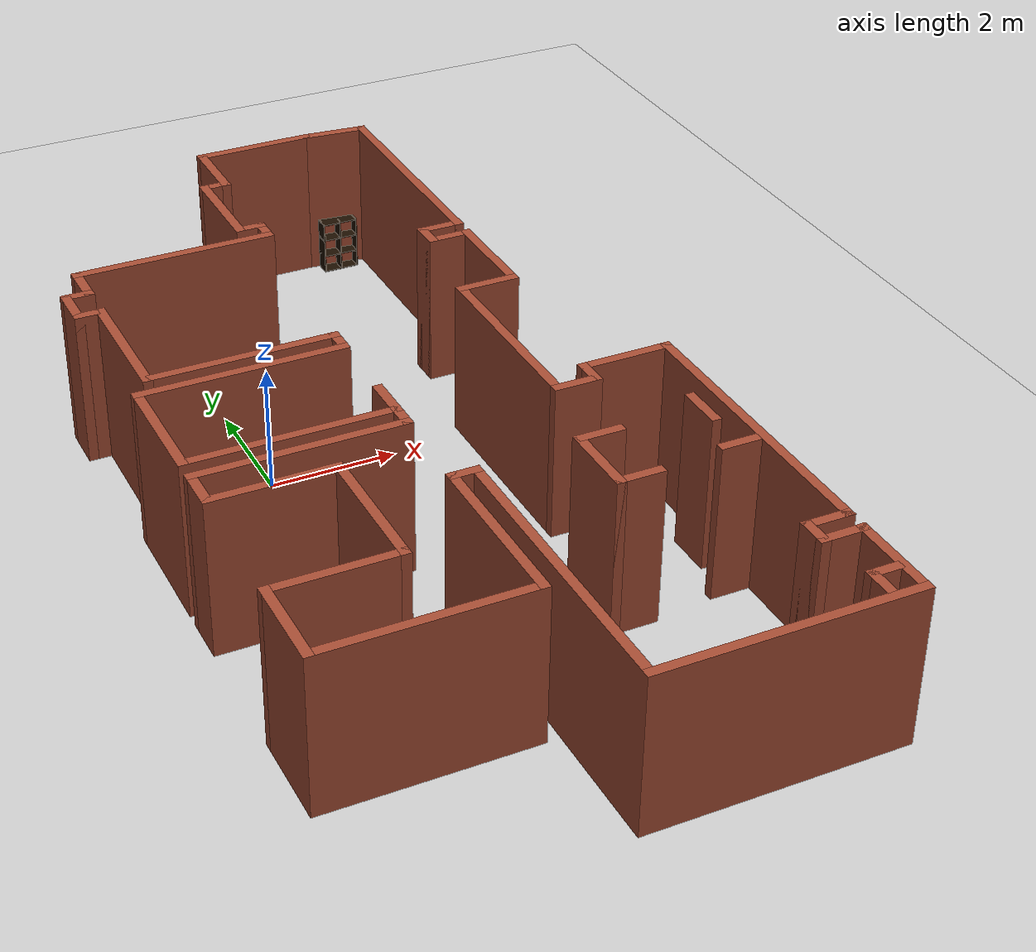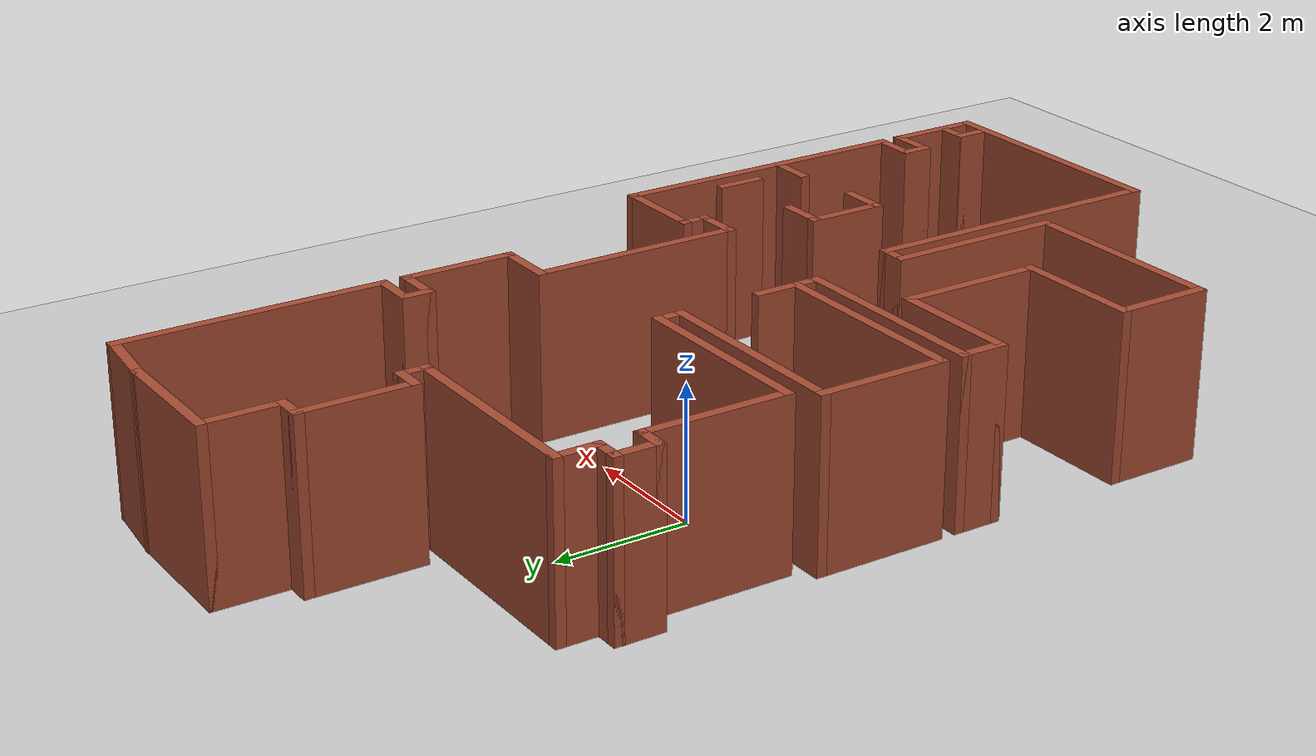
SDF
<sdf version="1.6">
 <world name="default">
  <light name="sun" type="directional">
   <pose>0 0 10 0 -0 0</pose>
   <diffuse>0.8 0.8 0.8 1</diffuse>
   <specular>0.2 0.2 0.2 1</specular>
   <attenuation>
    <range>1000</range>
    <constant>0.9</constant>
    <linear>0.01</linear>
    <quadratic>0.001</quadratic>
   </attenuation>
   <direction>-0.5 0.1 -0.9</direction>
  </light>
  <model name="ground_plane">
   <static>1</static>
   <link name="link">
    <collision name="collision">
     <geometry><plane><normal>0 0 1</normal><size>100 100</size></plane></geometry>
     <surface>
      <contact><collide_bitmask>65535</collide_bitmask></contact>
      <friction><ode><mu>100</mu><mu2>50</mu2></ode></friction>
     </surface>
    </collision>
    <visual name="visual">
     <cast_shadows>0</cast_shadows>
     <geometry><plane><normal>0 0 1</normal><size>100 100</size></plane></geometry>
     <material>
      <script><uri>file://media/materials/scripts/gazebo.material</uri><name>Gazebo/Grey</name></script>
     </material>
    </visual>
   </link>
  </model>
  <gravity>0 0 -9.8</gravity>
  <magnetic_field>6e-06 2.3e-05 -4.2e-05</magnetic_field>
  <atmosphere type="adiabatic"/>
  <physics name="default_physics" default="0" type="ode">
   <max_step_size>0.001</max_step_size>
   <real_time_factor>1</real_time_factor>
   <real_time_update_rate>1000</real_time_update_rate>
  </physics>
  <scene><ambient>0.4 0.4 0.4 1</ambient><background>0.7 0.7 0.7 1</background><shadows>1</shadows></scene>
  <audio><device>default</device></audio>
  <spherical_coordinates>
   <surface_model>EARTH_WGS84</surface_model>
   <latitude_deg>0</latitude_deg>
   <longitude_deg>0</longitude_deg>
   <elevation>0</elevation>
   <heading_deg>0</heading_deg>
  </spherical_coordinates>
  <model name="map_87">
   <pose>1.49596 -1.34946 0 0 -0 0</pose>
   <link name="Wall_1">
    <collision name="Wall_1_Collision">
     <geometry><box><size>2 0.15 2.5</size></box></geometry>
     <pose>0 0 1.25 0 -0 0</pose>
    </collision>
    <visual name="Wall_1_Visual">
     <pose>0 0 1.25 0 -0 0</pose>
     <geometry><box><size>2 0.15 2.5</size></box></geometry>
     <material>
      <script><uri>file://media/materials/scripts/gazebo.material</uri><name>Gazebo/Bricks</name></script>
      <ambient>1 1 1 1</ambient>
     </material>
     <meta><layer>0</layer></meta>
    </visual>
    <pose>0.675 7.47145 0 0 -0 3.14159</pose>
   </link>
   <link name="Wall_10">
    <collision name="Wall_10_Collision">
     <geometry><box><size>0.75 0.15 2.5</size></box></geometry>
     <pose>0 0 1.25 0 -0 0</pose>
    </collision>
    <visual name="Wall_10_Visual">
     <pose>0 0 1.25 0 -0 0</pose>
     <geometry><box><size>0.75 0.15 2.5</size></box></geometry>
     <material>
      <script><uri>file://media/materials/scripts/gazebo.material</uri><name>Gazebo/Bricks</name></script>
      <ambient>1 1 1 1</ambient>
     </material>
     <meta><layer>0</layer></meta>
    </visual>
    <pose>-3.7 3.52146 0 0 -0 -1.5708</pose>
   </link>
   <link name="Wall_11">
    <collision name="Wall_11_Collision">
     <geometry><box><size>0.5 0.15 2.5</size></box></geometry>
     <pose>0 0 1.25 0 -0 0</pose>
    </collision>
    <visual name="Wall_11_Visual">
     <pose>0 0 1.25 0 -0 0</pose>
     <geometry><box><size>0.5 0.15 2.5</size></box></geometry>
     <material>
      <script><uri>file://media/materials/scripts/gazebo.material</uri><name>Gazebo/Bricks</name></script>
      <ambient>1 1 1 1</ambient>
     </material>
     <meta><layer>0</layer></meta>
    </visual>
    <pose>-3.525 3.22146 0 0 -0 0</pose>
   </link>
   <link name="Wall_14">
    <collision name="Wall_14_Collision">
     <geometry><box><size>2.25 0.15 2.5</size></box></geometry>
     <pose>0 0 1.25 0 -0 0</pose>
    </collision>
    <visual name="Wall_14_Visual">
     <pose>0 0 1.25 0 -0 0</pose>
     <geometry><box><size>2.25 0.15 2.5</size></box></geometry>
     <material>
      <script><uri>file://media/materials/scripts/gazebo.material</uri><name>Gazebo/Bricks</name></script>
      <ambient>1 1 1 1</ambient>
     </material>
     <meta><layer>0</layer></meta>
    </visual>
    <pose>-3.35 2.17145 0 0 -0 -1.5708</pose>
   </link>
   <link name="Wall_15">
    <collision name="Wall_15_Collision">
     <geometry><box><size>3 0.15 2.5</size></box></geometry>
     <pose>0 0 1.25 0 -0 0</pose>
    </collision>
    <visual name="Wall_15_Visual">
     <pose>0 0 1.25 0 -0 0</pose>
     <geometry><box><size>3 0.15 2.5</size></box></geometry>
     <material>
      <script><uri>file://media/materials/scripts/gazebo.material</uri><name>Gazebo/Bricks</name></script>
      <ambient>1 1 1 1</ambient>
     </material>
     <meta><layer>0</layer></meta>
    </visual>
    <pose>-1.925 1.12146 0 0 -0 0</pose>
   </link>
   <link name="Wall_16">
    <collision name="Wall_16_Collision">
     <geometry><box><size>0.5 0.15 2.5</size></box></geometry>
     <pose>0 0 1.25 0 -0 0</pose>
    </collision>
    <visual name="Wall_16_Visual">
     <pose>0 0 1.25 0 -0 0</pose>
     <geometry><box><size>0.5 0.15 2.5</size></box></geometry>
     <material>
      <script><uri>file://media/materials/scripts/gazebo.material</uri><name>Gazebo/Bricks</name></script>
      <ambient>1 1 1 1</ambient>
     </material>
     <meta><layer>0</layer></meta>
    </visual>
    <pose>-0.5 0.946455 0 0 -0 -1.5708</pose>
   </link>
   <link name="Wall_17">
    <collision name="Wall_17_Collision">
     <geometry><box><size>3.25 0.15 2.5</size></box></geometry>
     <pose>0 0 1.25 0 -0 0</pose>
    </collision>
    <visual name="Wall_17_Visual">
     <pose>0 0 1.25 0 -0 0</pose>
     <geometry><box><size>3.25 0.15 2.5</size></box></geometry>
     <material>
      <script><uri>file://media/materials/scripts/gazebo.material</uri><name>Gazebo/Bricks</name></script>
      <ambient>1 1 1 1</ambient>
     </material>
     <meta><layer>0</layer></meta>
    </visual>
    <pose>-2.05 0.771455 0 0 -0 3.14159</pose>
   </link>
   <link name="Wall_18">
    <collision name="Wall_18_Collision">
     <geometry><box><size>2 0.15 2.5</size></box></geometry>
     <pose>0 0 1.25 0 -0 0</pose>
    </collision>
    <visual name="Wall_18_Visual">
     <pose>0 0 1.25 0 -0 0</pose>
     <geometry><box><size>2 0.15 2.5</size></box></geometry>
     <material>
      <script><uri>file://media/materials/scripts/gazebo.material</uri><name>Gazebo/Bricks</name></script>
      <ambient>1 1 1 1</ambient>
     </material>
     <meta><layer>0</layer></meta>
    </visual>
    <pose>-3.6 -0.153545 0 0 -0 -1.5708</pose>
   </link>
   <link name="Wall_19">
    <collision name="Wall_19_Collision">
     <geometry><box><size>3.25 0.15 2.5</size></box></geometry>
     <pose>0 0 1.25 0 -0 0</pose>
    </collision>
    <visual name="Wall_19_Visual">
     <pose>0 0 1.25 0 -0 0</pose>
     <geometry><box><size>3.25 0.15 2.5</size></box></geometry>
     <material>
      <script><uri>file://media/materials/scripts/gazebo.material</uri><name>Gazebo/Bricks</name></script>
      <ambient>1 1 1 1</ambient>
     </material>
     <meta><layer>0</layer></meta>
    </visual>
    <pose>-2.05 -1.07855 0 0 -0 0</pose>
   </link>
   <link name="Wall_2">
    <collision name="Wall_2_Collision">
     <geometry><box><size>1.25 0.15 2.5</size></box></geometry>
     <pose>0 0 1.25 0 -0 0</pose>
    </collision>
    <visual name="Wall_2_Visual">
     <pose>0 0 1.25 0 -0 0</pose>
     <geometry><box><size>1.25 0.15 2.5</size></box></geometry>
     <material>
      <script><uri>file://media/materials/scripts/gazebo.material</uri><name>Gazebo/Bricks</name></script>
      <ambient>1 1 1 1</ambient>
     </material>
     <meta><layer>0</layer></meta>
    </visual>
    <pose>-0.25 6.92145 0 0 -0 -1.5708</pose>
   </link>
   <link name="Wall_20">
    <collision name="Wall_20_Collision">
     <geometry><box><size>0.5 0.15 2.5</size></box></geometry>
     <pose>0 0 1.25 0 -0 0</pose>
    </collision>
    <visual name="Wall_20_Visual">
     <pose>0 0 1.25 0 -0 0</pose>
     <geometry><box><size>0.5 0.15 2.5</size></box></geometry>
     <material>
      <script><uri>file://media/materials/scripts/gazebo.material</uri><name>Gazebo/Bricks</name></script>
      <ambient>1 1 1 1</ambient>
     </material>
     <meta><layer>0</layer></meta>
    </visual>
    <pose>-0.5 -1.25354 0 0 -0 -1.5708</pose>
   </link>
   <link name="Wall_21">
    <collision name="Wall_21_Collision">
     <geometry><box><size>3.25 0.15 2.5</size></box></geometry>
     <pose>0 0 1.25 0 -0 0</pose>
    </collision>
    <visual name="Wall_21_Visual">
     <pose>0 0 1.25 0 -0 0</pose>
     <geometry><box><size>3.25 0.15 2.5</size></box></geometry>
     <material>
      <script><uri>file://media/materials/scripts/gazebo.material</uri><name>Gazebo/Bricks</name></script>
      <ambient>1 1 1 1</ambient>
     </material>
     <meta><layer>0</layer></meta>
    </visual>
    <pose>-2.05 -1.42854 0 0 -0 3.14159</pose>
   </link>
   <link name="Wall_22">
    <collision name="Wall_22_Collision">
     <geometry><box><size>0.75 0.15 2.5</size></box></geometry>
     <pose>0 0 1.25 0 -0 0</pose>
    </collision>
    <visual name="Wall_22_Visual">
     <pose>0 0 1.25 0 -0 0</pose>
     <geometry><box><size>0.75 0.15 2.5</size></box></geometry>
     <material>
      <script><uri>file://media/materials/scripts/gazebo.material</uri><name>Gazebo/Bricks</name></script>
      <ambient>1 1 1 1</ambient>
     </material>
     <meta><layer>0</layer></meta>
    </visual>
    <pose>-3.6 -1.72854 0 0 -0 -1.5708</pose>
   </link>
   <link name="Wall_25">
    <collision name="Wall_25_Collision">
     <geometry><box><size>2 0.15 2.5</size></box></geometry>
     <pose>0 0 1.25 0 -0 0</pose>
    </collision>
    <visual name="Wall_25_Visual">
     <pose>0 0 1.25 0 -0 0</pose>
     <geometry><box><size>2 0.15 2.5</size></box></geometry>
     <material>
      <script><uri>file://media/materials/scripts/gazebo.material</uri><name>Gazebo/Bricks</name></script>
      <ambient>1 1 1 1</ambient>
     </material>
     <meta><layer>0</layer></meta>
    </visual>
    <pose>-2.675 -2.02854 0 0 -0 0</pose>
   </link>
   <link name="Wall_26">
    <collision name="Wall_26_Collision">
     <geometry><box><size>2.25 0.15 2.5</size></box></geometry>
     <pose>0 0 1.25 0 -0 0</pose>
    </collision>
    <visual name="Wall_26_Visual">
     <pose>0 0 1.25 0 -0 0</pose>
     <geometry><box><size>2.25 0.15 2.5</size></box></geometry>
     <material>
      <script><uri>file://media/materials/scripts/gazebo.material</uri><name>Gazebo/Bricks</name></script>
      <ambient>1 1 1 1</ambient>
     </material>
     <meta><layer>0</layer></meta>
    </visual>
    <pose>-1.75 -3.07855 0 0 -0 -1.5708</pose>
   </link>
   <link name="Wall_27">
    <collision name="Wall_27_Collision">
     <geometry><box><size>2 0.15 2.5</size></box></geometry>
     <pose>0 0 1.25 0 -0 0</pose>
    </collision>
    <visual name="Wall_27_Visual">
     <pose>0 0 1.25 0 -0 0</pose>
     <geometry><box><size>2 0.15 2.5</size></box></geometry>
     <material>
      <script><uri>file://media/materials/scripts/gazebo.material</uri><name>Gazebo/Bricks</name></script>
      <ambient>1 1 1 1</ambient>
     </material>
     <meta><layer>0</layer></meta>
    </visual>
    <pose>-2.675 -4.12854 0 0 -0 3.14159</pose>
   </link>
   <link name="Wall_28">
    <collision name="Wall_28_Collision">
     <geometry><box><size>1.5 0.15 2.5</size></box></geometry>
     <pose>0 0 1.25 0 -0 0</pose>
    </collision>
    <visual name="Wall_28_Visual">
     <pose>0 0 1.25 0 -0 0</pose>
     <geometry><box><size>1.5 0.15 2.5</size></box></geometry>
     <material>
      <script><uri>file://media/materials/scripts/gazebo.material</uri><name>Gazebo/Bricks</name></script>
      <ambient>1 1 1 1</ambient>
     </material>
     <meta><layer>0</layer></meta>
    </visual>
    <pose>-3.6 -4.80354 0 0 -0 -1.5708</pose>
   </link>
   <link name="Wall_29">
    <collision name="Wall_29_Collision">
     <geometry><box><size>3.25 0.15 2.5</size></box></geometry>
     <pose>0 0 1.25 0 -0 0</pose>
    </collision>
    <visual name="Wall_29_Visual">
     <pose>0 0 1.25 0 -0 0</pose>
     <geometry><box><size>3.25 0.15 2.5</size></box></geometry>
     <material>
      <script><uri>file://media/materials/scripts/gazebo.material</uri><name>Gazebo/Bricks</name></script>
      <ambient>1 1 1 1</ambient>
     </material>
     <meta><layer>0</layer></meta>
    </visual>
    <pose>-2.05 -5.47855 0 0 -0 0</pose>
   </link>
   <link name="Wall_3">
    <collision name="Wall_3_Collision">
     <geometry><box><size>0.5 0.15 2.5</size></box></geometry>
     <pose>0 0 1.25 0 -0 0</pose>
    </collision>
    <visual name="Wall_3_Visual">
     <pose>0 0 1.25 0 -0 0</pose>
     <geometry><box><size>0.5 0.15 2.5</size></box></geometry>
     <material>
      <script><uri>file://media/materials/scripts/gazebo.material</uri><name>Gazebo/Bricks</name></script>
      <ambient>1 1 1 1</ambient>
     </material>
     <meta><layer>0</layer></meta>
    </visual>
    <pose>-0.425 6.37146 0 0 -0 3.14159</pose>
   </link>
   <link name="Wall_30">
    <collision name="Wall_30_Collision">
     <geometry><box><size>2.75 0.15 2.5</size></box></geometry>
     <pose>0 0 1.25 0 -0 0</pose>
    </collision>
    <visual name="Wall_30_Visual">
     <pose>0 0 1.25 0 -0 0</pose>
     <geometry><box><size>2.75 0.15 2.5</size></box></geometry>
     <material>
      <script><uri>file://media/materials/scripts/gazebo.material</uri><name>Gazebo/Bricks</name></script>
      <ambient>1 1 1 1</ambient>
     </material>
     <meta><layer>0</layer></meta>
    </visual>
    <pose>-0.5 -4.17854 0 0 -0 1.5708</pose>
   </link>
   <link name="Wall_33">
    <collision name="Wall_33_Collision">
     <geometry><box><size>0.5 0.15 2.5</size></box></geometry>
     <pose>0 0 1.25 0 -0 0</pose>
    </collision>
    <visual name="Wall_33_Visual">
     <pose>0 0 1.25 0 -0 0</pose>
     <geometry><box><size>0.5 0.15 2.5</size></box></geometry>
     <material>
      <script><uri>file://media/materials/scripts/gazebo.material</uri><name>Gazebo/Bricks</name></script>
      <ambient>1 1 1 1</ambient>
     </material>
     <meta><layer>0</layer></meta>
    </visual>
    <pose>-0.325 -2.87854 0 0 -0 0</pose>
   </link>
   <link name="Wall_34">
    <collision name="Wall_34_Collision">
     <geometry><box><size>4.75 0.15 2.5</size></box></geometry>
     <pose>0 0 1.25 0 -0 0</pose>
    </collision>
    <visual name="Wall_34_Visual">
     <pose>0 0 1.25 0 -0 0</pose>
     <geometry><box><size>4.75 0.15 2.5</size></box></geometry>
     <material>
      <script><uri>file://media/materials/scripts/gazebo.material</uri><name>Gazebo/Bricks</name></script>
      <ambient>1 1 1 1</ambient>
     </material>
     <meta><layer>0</layer></meta>
    </visual>
    <pose>-0.15 -5.17854 0 0 -0 -1.5708</pose>
   </link>
   <link name="Wall_35">
    <collision name="Wall_35_Collision">
     <geometry><box><size>4 0.15 2.5</size></box></geometry>
     <pose>0 0 1.25 0 -0 0</pose>
    </collision>
    <visual name="Wall_35_Visual">
     <pose>0 0 1.25 0 -0 0</pose>
     <geometry><box><size>4 0.15 2.5</size></box></geometry>
     <material>
      <script><uri>file://media/materials/scripts/gazebo.material</uri><name>Gazebo/Bricks</name></script>
      <ambient>1 1 1 1</ambient>
     </material>
     <meta><layer>0</layer></meta>
    </visual>
    <pose>1.775 -7.47855 0 0 -0 0</pose>
   </link>
   <link name="Wall_36">
    <collision name="Wall_36_Collision">
     <geometry><box><size>1.5 0.15 2.5</size></box></geometry>
     <pose>0 0 1.25 0 -0 0</pose>
    </collision>
    <visual name="Wall_36_Visual">
     <pose>0 0 1.25 0 -0 0</pose>
     <geometry><box><size>1.5 0.15 2.5</size></box></geometry>
     <material>
      <script><uri>file://media/materials/scripts/gazebo.material</uri><name>Gazebo/Bricks</name></script>
      <ambient>1 1 1 1</ambient>
     </material>
     <meta><layer>0</layer></meta>
    </visual>
    <pose>3.7 -6.80354 0 0 -0 1.5708</pose>
   </link>
   <link name="Wall_37">
    <collision name="Wall_37_Collision">
     <geometry><box><size>0.75 0.15 2.5</size></box></geometry>
     <pose>0 0 1.25 0 -0 0</pose>
    </collision>
    <visual name="Wall_37_Visual">
     <pose>0 0 1.25 0 -0 0</pose>
     <geometry><box><size>0.75 0.15 2.5</size></box></geometry>
     <material>
      <script><uri>file://media/materials/scripts/gazebo.material</uri><name>Gazebo/Bricks</name></script>
      <ambient>1 1 1 1</ambient>
     </material>
     <meta><layer>0</layer></meta>
    </visual>
    <pose>3.4 -6.12854 0 0 -0 3.14159</pose>
   </link>
   <link name="Wall_38">
    <collision name="Wall_38_Collision">
     <geometry><box><size>0.5 0.15 2.5</size></box></geometry>
     <pose>0 0 1.25 0 -0 0</pose>
    </collision>
    <visual name="Wall_38_Visual">
     <pose>0 0 1.25 0 -0 0</pose>
     <geometry><box><size>0.5 0.15 2.5</size></box></geometry>
     <material>
      <script><uri>file://media/materials/scripts/gazebo.material</uri><name>Gazebo/Bricks</name></script>
      <ambient>1 1 1 1</ambient>
     </material>
     <meta><layer>0</layer></meta>
    </visual>
    <pose>3.1 -5.95355 0 0 -0 1.5708</pose>
   </link>
   <link name="Wall_39">
    <collision name="Wall_39_Collision">
     <geometry><box><size>0.75 0.15 2.5</size></box></geometry>
     <pose>0 0 1.25 0 -0 0</pose>
    </collision>
    <visual name="Wall_39_Visual">
     <pose>0 0 1.25 0 -0 0</pose>
     <geometry><box><size>0.75 0.15 2.5</size></box></geometry>
     <material>
      <script><uri>file://media/materials/scripts/gazebo.material</uri><name>Gazebo/Bricks</name></script>
      <ambient>1 1 1 1</ambient>
     </material>
     <meta><layer>0</layer></meta>
    </visual>
    <pose>3.4 -5.77855 0 0 -0 0</pose>
   </link>
   <link name="Wall_4">
    <collision name="Wall_4_Collision">
     <geometry><box><size>1.75 0.15 2.5</size></box></geometry>
     <pose>0 0 1.25 0 -0 0</pose>
    </collision>
    <visual name="Wall_4_Visual">
     <pose>0 0 1.25 0 -0 0</pose>
     <geometry><box><size>1.75 0.15 2.5</size></box></geometry>
     <material>
      <script><uri>file://media/materials/scripts/gazebo.material</uri><name>Gazebo/Bricks</name></script>
      <ambient>1 1 1 1</ambient>
     </material>
     <meta><layer>0</layer></meta>
    </visual>
    <pose>-0.6 5.57146 0 0 -0 -1.5708</pose>
   </link>
   <link name="Wall_40">
    <collision name="Wall_40_Collision">
     <geometry><box><size>4.75 0.15 2.5</size></box></geometry>
     <pose>0 0 1.25 0 -0 0</pose>
    </collision>
    <visual name="Wall_40_Visual">
     <pose>0 0 1.25 0 -0 0</pose>
     <geometry><box><size>4.75 0.15 2.5</size></box></geometry>
     <material>
      <script><uri>file://media/materials/scripts/gazebo.material</uri><name>Gazebo/Bricks</name></script>
      <ambient>1 1 1 1</ambient>
     </material>
     <meta><layer>0</layer></meta>
    </visual>
    <pose>3.7 -3.47854 0 0 -0 1.5708</pose>
   </link>
   <link name="Wall_41">
    <collision name="Wall_41_Collision">
     <geometry><box><size>1.5 0.15 2.5</size></box></geometry>
     <pose>0 0 1.25 0 -0 0</pose>
    </collision>
    <visual name="Wall_41_Visual">
     <pose>0 0 1.25 0 -0 0</pose>
     <geometry><box><size>1.5 0.15 2.5</size></box></geometry>
     <material>
      <script><uri>file://media/materials/scripts/gazebo.material</uri><name>Gazebo/Bricks</name></script>
      <ambient>1 1 1 1</ambient>
     </material>
     <meta><layer>0</layer></meta>
    </visual>
    <pose>3.025 -1.17854 0 0 -0 3.14159</pose>
   </link>
   <link name="Wall_42">
    <collision name="Wall_42_Collision">
     <geometry><box><size>0.5 0.15 2.5</size></box></geometry>
     <pose>0 0 1.25 0 -0 0</pose>
    </collision>
    <visual name="Wall_42_Visual">
     <pose>0 0 1.25 0 -0 0</pose>
     <geometry><box><size>0.5 0.15 2.5</size></box></geometry>
     <material>
      <script><uri>file://media/materials/scripts/gazebo.material</uri><name>Gazebo/Bricks</name></script>
      <ambient>1 1 1 1</ambient>
     </material>
     <meta><layer>0</layer></meta>
    </visual>
    <pose>2.35 -1.35354 0 0 -0 -1.5708</pose>
   </link>
   <link name="Wall_43">
    <collision name="Wall_43_Collision">
     <geometry><box><size>0.75 0.15 2.5</size></box></geometry>
     <pose>0 0 1.25 0 -0 0</pose>
    </collision>
    <visual name="Wall_43_Visual">
     <pose>0 0 1.25 0 -0 0</pose>
     <geometry><box><size>0.75 0.15 2.5</size></box></geometry>
     <material>
      <script><uri>file://media/materials/scripts/gazebo.material</uri><name>Gazebo/Bricks</name></script>
      <ambient>1 1 1 1</ambient>
     </material>
     <meta><layer>0</layer></meta>
    </visual>
    <pose>2.05 -1.52855 0 0 -0 3.14159</pose>
   </link>
   <link name="Wall_44">
    <collision name="Wall_44_Collision">
     <geometry><box><size>3.25 0.15 2.5</size></box></geometry>
     <pose>0 0 1.25 0 -0 0</pose>
    </collision>
    <visual name="Wall_44_Visual">
     <pose>0 0 1.25 0 -0 0</pose>
     <geometry><box><size>3.25 0.15 2.5</size></box></geometry>
     <material>
      <script><uri>file://media/materials/scripts/gazebo.material</uri><name>Gazebo/Bricks</name></script>
      <ambient>1 1 1 1</ambient>
     </material>
     <meta><layer>0</layer></meta>
    </visual>
    <pose>1.75 0.021455 0 0 -0 1.5708</pose>
   </link>
   <link name="Wall_45">
    <collision name="Wall_45_Collision">
     <geometry><box><size>1 0.15 2.5</size></box></geometry>
     <pose>0 0 1.25 0 -0 0</pose>
    </collision>
    <visual name="Wall_45_Visual">
     <pose>0 0 1.25 0 -0 0</pose>
     <geometry><box><size>1 0.15 2.5</size></box></geometry>
     <material>
      <script><uri>file://media/materials/scripts/gazebo.material</uri><name>Gazebo/Bricks</name></script>
      <ambient>1 1 1 1</ambient>
     </material>
     <meta><layer>0</layer></meta>
    </visual>
    <pose>2.175 1.57146 0 0 -0 0</pose>
   </link>
   <link name="Wall_46">
    <collision name="Wall_46_Collision">
     <geometry><box><size>1.75 0.15 2.5</size></box></geometry>
     <pose>0 0 1.25 0 -0 0</pose>
    </collision>
    <visual name="Wall_46_Visual">
     <pose>0 0 1.25 0 -0 0</pose>
     <geometry><box><size>1.75 0.15 2.5</size></box></geometry>
     <material>
      <script><uri>file://media/materials/scripts/gazebo.material</uri><name>Gazebo/Bricks</name></script>
      <ambient>1 1 1 1</ambient>
     </material>
     <meta><layer>0</layer></meta>
    </visual>
    <pose>2.6 2.37146 0 0 -0 1.5708</pose>
   </link>
   <link name="Wall_47">
    <collision name="Wall_47_Collision">
     <geometry><box><size>0.75 0.15 2.5</size></box></geometry>
     <pose>0 0 1.25 0 -0 0</pose>
    </collision>
    <visual name="Wall_47_Visual">
     <pose>0 0 1.25 0 -0 0</pose>
     <geometry><box><size>0.75 0.15 2.5</size></box></geometry>
     <material>
      <script><uri>file://media/materials/scripts/gazebo.material</uri><name>Gazebo/Bricks</name></script>
      <ambient>1 1 1 1</ambient>
     </material>
     <meta><layer>0</layer></meta>
    </visual>
    <pose>2.3 3.17145 0 0 -0 3.14159</pose>
   </link>
   <link name="Wall_48">
    <collision name="Wall_48_Collision">
     <geometry><box><size>0.5 0.15 2.5</size></box></geometry>
     <pose>0 0 1.25 0 -0 0</pose>
    </collision>
    <visual name="Wall_48_Visual">
     <pose>0 0 1.25 0 -0 0</pose>
     <geometry><box><size>0.5 0.15 2.5</size></box></geometry>
     <material>
      <script><uri>file://media/materials/scripts/gazebo.material</uri><name>Gazebo/Bricks</name></script>
      <ambient>1 1 1 1</ambient>
     </material>
     <meta><layer>0</layer></meta>
    </visual>
    <pose>2 3.34646 0 0 -0 1.5708</pose>
   </link>
   <link name="Wall_49">
    <collision name="Wall_49_Collision">
     <geometry><box><size>0.75 0.15 2.5</size></box></geometry>
     <pose>0 0 1.25 0 -0 0</pose>
    </collision>
    <visual name="Wall_49_Visual">
     <pose>0 0 1.25 0 -0 0</pose>
     <geometry><box><size>0.75 0.15 2.5</size></box></geometry>
     <material>
      <script><uri>file://media/materials/scripts/gazebo.material</uri><name>Gazebo/Bricks</name></script>
      <ambient>1 1 1 1</ambient>
     </material>
     <meta><layer>0</layer></meta>
    </visual>
    <pose>2.3 3.52146 0 0 -0 0</pose>
   </link>
   <link name="Wall_5">
    <collision name="Wall_5_Collision">
     <geometry><box><size>0.5 0.15 2.5</size></box></geometry>
     <pose>0 0 1.25 0 -0 0</pose>
    </collision>
    <visual name="Wall_5_Visual">
     <pose>0 0 1.25 0 -0 0</pose>
     <geometry><box><size>0.5 0.15 2.5</size></box></geometry>
     <material>
      <script><uri>file://media/materials/scripts/gazebo.material</uri><name>Gazebo/Bricks</name></script>
      <ambient>1 1 1 1</ambient>
     </material>
     <meta><layer>0</layer></meta>
    </visual>
    <pose>-0.425 4.77145 0 0 -0 0</pose>
   </link>
   <link name="Wall_50">
    <collision name="Wall_50_Collision">
     <geometry><box><size>4 0.15 2.5</size></box></geometry>
     <pose>0 0 1.25 0 -0 0</pose>
    </collision>
    <visual name="Wall_50_Visual">
     <pose>0 0 1.25 0 -0 0</pose>
     <geometry><box><size>4 0.15 2.5</size></box></geometry>
     <material>
      <script><uri>file://media/materials/scripts/gazebo.material</uri><name>Gazebo/Bricks</name></script>
      <ambient>1 1 1 1</ambient>
     </material>
     <meta><layer>0</layer></meta>
    </visual>
    <pose>2.6 5.44646 0 0 -0 1.5708</pose>
   </link>
   <link name="Wall_51">
    <collision name="Wall_51_Collision">
     <geometry><box><size>1.15499 0.15 2.5</size></box></geometry>
     <pose>0 0 1.25 0 -0 0</pose>
    </collision>
    <visual name="Wall_51_Visual">
     <pose>0 0 1.25 0 -0 0</pose>
     <geometry><box><size>1.15499 0.15 2.5</size></box></geometry>
     <material>
      <script><uri>file://media/materials/scripts/gazebo.material</uri><name>Gazebo/Bricks</name></script>
      <ambient>1 1 1 1</ambient>
     </material>
     <meta><layer>0</layer></meta>
    </visual>
    <pose>2.1 7.42145 0 0 -0 3.04192</pose>
   </link>
   <link name="Wall_53">
    <collision name="Wall_53_Collision">
     <geometry><box><size>0.75 0.15 2.5</size></box></geometry>
     <pose>0 0 1.25 0 -0 0</pose>
    </collision>
    <visual name="Wall_53_Visual">
     <pose>0 0 1.25 0 -0 0</pose>
     <geometry><box><size>0.75 0.15 2.5</size></box></geometry>
     <material>
      <script><uri>file://media/materials/scripts/gazebo.material</uri><name>Gazebo/Bricks</name></script>
      <ambient>1 1 1 1</ambient>
     </material>
     <meta><layer>0</layer></meta>
    </visual>
    <pose>1.72215 -2.80074 0 0 -0 3.14159</pose>
   </link>
   <link name="Wall_54">
    <collision name="Wall_54_Collision">
     <geometry><box><size>1.25 0.15 2.5</size></box></geometry>
     <pose>0 0 1.25 0 -0 0</pose>
    </collision>
    <visual name="Wall_54_Visual">
     <pose>0 0 1.25 0 -0 0</pose>
     <geometry><box><size>1.25 0.15 2.5</size></box></geometry>
     <material>
      <script><uri>file://media/materials/scripts/gazebo.material</uri><name>Gazebo/Bricks</name></script>
      <ambient>1 1 1 1</ambient>
     </material>
     <meta><layer>0</layer></meta>
    </visual>
    <pose>1.42214 -3.35074 0 0 -0 -1.5708</pose>
   </link>
   <link name="Wall_55">
    <collision name="Wall_55_Collision">
     <geometry><box><size>0.75 0.15 2.5</size></box></geometry>
     <pose>0 0 1.25 0 -0 0</pose>
    </collision>
    <visual name="Wall_55_Visual">
     <pose>0 0 1.25 0 -0 0</pose>
     <geometry><box><size>0.75 0.15 2.5</size></box></geometry>
     <material>
      <script><uri>file://media/materials/scripts/gazebo.material</uri><name>Gazebo/Bricks</name></script>
      <ambient>1 1 1 1</ambient>
     </material>
     <meta><layer>0</layer></meta>
    </visual>
    <pose>1.72215 -3.90074 0 0 -0 0</pose>
   </link>
   <link name="Wall_57">
    <collision name="Wall_57_Collision">
     <geometry><box><size>0.75 0.15 2.5</size></box></geometry>
     <pose>0 0 1.25 0 -0 0</pose>
    </collision>
    <visual name="Wall_57_Visual">
     <pose>0 0 1.25 0 -0 0</pose>
     <geometry><box><size>0.75 0.15 2.5</size></box></geometry>
     <material>
      <script><uri>file://media/materials/scripts/gazebo.material</uri><name>Gazebo/Bricks</name></script>
      <ambient>1 1 1 1</ambient>
     </material>
     <meta><layer>0</layer></meta>
    </visual>
    <pose>3.37555 -3.78575 0 0 -0 3.14159</pose>
   </link>
   <link name="Wall_59">
    <collision name="Wall_59_Collision">
     <geometry><box><size>0.75 0.15 2.5</size></box></geometry>
     <pose>0 0 1.25 0 -0 0</pose>
    </collision>
    <visual name="Wall_59_Visual">
     <pose>0 0 1.25 0 -0 0</pose>
     <geometry><box><size>0.75 0.15 2.5</size></box></geometry>
     <material>
      <script><uri>file://media/materials/scripts/gazebo.material</uri><name>Gazebo/Bricks</name></script>
      <ambient>1 1 1 1</ambient>
     </material>
     <meta><layer>0</layer></meta>
    </visual>
    <pose>3.32376 -2.81931 0 0 -0 -1.5708</pose>
   </link>
   <link name="Wall_6">
    <collision name="Wall_6_Collision">
     <geometry><box><size>0.5 0.15 2.5</size></box></geometry>
     <pose>0 0 1.25 0 -0 0</pose>
    </collision>
    <visual name="Wall_6_Visual">
     <pose>0 0 1.25 0 -0 0</pose>
     <geometry><box><size>0.5 0.15 2.5</size></box></geometry>
     <material>
      <script><uri>file://media/materials/scripts/gazebo.material</uri><name>Gazebo/Bricks</name></script>
      <ambient>1 1 1 1</ambient>
     </material>
     <meta><layer>0</layer></meta>
    </visual>
    <pose>-0.25 4.59645 0 0 -0 -1.5708</pose>
   </link>
   <link name="Wall_61">
    <collision name="Wall_61_Collision">
     <geometry><box><size>0.5 0.15 2.5</size></box></geometry>
     <pose>0 0 1.25 0 -0 0</pose>
    </collision>
    <visual name="Wall_61_Visual">
     <pose>0 0 1.25 0 -0 0</pose>
     <geometry><box><size>0.5 0.15 2.5</size></box></geometry>
     <material>
      <script><uri>file://media/materials/scripts/gazebo.material</uri><name>Gazebo/Bricks</name></script>
      <ambient>1 1 1 1</ambient>
     </material>
     <meta><layer>0</layer></meta>
    </visual>
    <pose>3.43019 -6.98702 0 0 -0 3.14159</pose>
   </link>
   <link name="Wall_62">
    <collision name="Wall_62_Collision">
     <geometry><box><size>0.5 0.15 2.5</size></box></geometry>
     <pose>0 0 1.25 0 -0 0</pose>
    </collision>
    <visual name="Wall_62_Visual">
     <pose>0 0 1.25 0 -0 0</pose>
     <geometry><box><size>0.5 0.15 2.5</size></box></geometry>
     <material>
      <script><uri>file://media/materials/scripts/gazebo.material</uri><name>Gazebo/Bricks</name></script>
      <ambient>1 1 1 1</ambient>
     </material>
     <meta><layer>0</layer></meta>
    </visual>
    <pose>3.25519 -7.16202 0 0 -0 -1.5708</pose>
   </link>
   <link name="Wall_66">
    <collision name="Wall_66_Collision">
     <geometry><box><size>0.75 0.15 2.5</size></box></geometry>
     <pose>0 0 1.25 0 -0 0</pose>
    </collision>
    <visual name="Wall_66_Visual">
     <pose>0 0 1.25 0 -0 0</pose>
     <geometry><box><size>0.75 0.15 2.5</size></box></geometry>
     <material>
      <script><uri>file://media/materials/scripts/gazebo.material</uri><name>Gazebo/Bricks</name></script>
      <ambient>1 1 1 1</ambient>
     </material>
     <meta><layer>0</layer></meta>
    </visual>
    <pose>-0.5 -0.778545 0 0 -0 1.5708</pose>
   </link>
   <link name="Wall_7">
    <collision name="Wall_7_Collision">
     <geometry><box><size>3.25 0.15 2.5</size></box></geometry>
     <pose>0 0 1.25 0 -0 0</pose>
    </collision>
    <visual name="Wall_7_Visual">
     <pose>0 0 1.25 0 -0 0</pose>
     <geometry><box><size>3.25 0.15 2.5</size></box></geometry>
     <material>
      <script><uri>file://media/materials/scripts/gazebo.material</uri><name>Gazebo/Bricks</name></script>
      <ambient>1 1 1 1</ambient>
     </material>
     <meta><layer>0</layer></meta>
    </visual>
    <pose>-1.8 4.42145 0 0 -0 3.14159</pose>
   </link>
   <link name="Wall_8">
    <collision name="Wall_8_Collision">
     <geometry><box><size>0.75 0.15 2.5</size></box></geometry>
     <pose>0 0 1.25 0 -0 0</pose>
    </collision>
    <visual name="Wall_8_Visual">
     <pose>0 0 1.25 0 -0 0</pose>
     <geometry><box><size>0.75 0.15 2.5</size></box></geometry>
     <material>
      <script><uri>file://media/materials/scripts/gazebo.material</uri><name>Gazebo/Bricks</name></script>
      <ambient>1 1 1 1</ambient>
     </material>
     <meta><layer>0</layer></meta>
    </visual>
    <pose>-3.35 4.12146 0 0 -0 -1.5708</pose>
   </link>
   <link name="Wall_9">
    <collision name="Wall_9_Collision">
     <geometry><box><size>0.5 0.15 2.5</size></box></geometry>
     <pose>0 0 1.25 0 -0 0</pose>
    </collision>
    <visual name="Wall_9_Visual">
     <pose>0 0 1.25 0 -0 0</pose>
     <geometry><box><size>0.5 0.15 2.5</size></box></geometry>
     <material>
      <script><uri>file://media/materials/scripts/gazebo.material</uri><name>Gazebo/Bricks</name></script>
      <ambient>1 1 1 1</ambient>
     </material>
     <meta><layer>0</layer></meta>
    </visual>
    <pose>-3.525 3.82145 0 0 -0 3.14159</pose>
   </link>
   <static>1</static>
  </model>
  <model name="6_Cube_StorageE">
   <link name="Wall_0">
    <pose>0 0 0.01 0 -0 0</pose>
    <inertial>
     <mass>1.6201</mass>
     <inertia><ixx>0.0119</ixx><iyy>0.0631</iyy><izz>0.0513</izz><ixy>0</ixy><ixz>0</ixz><iyz>0</iyz></inertia>
    </inertial>
    <collision name="Wall_0_Collision"><geometry><box><size>0.616 0.296 0.02</size></box></geometry></collision>
    <visual name="Wall_0_Visual">
     <geometry><box><size>0.616 0.296 0.02</size></box></geometry>
     <material>
      <script><uri>file://media/materials/scripts/gazebo.material</uri><name>Gazebo/Grey</name></script>
      <ambient>0.105882 0.0509804 0 1</ambient>
     </material>
    </visual>
   </link>
   <joint name="0_2" type="fixed">
    <pose>-0.308 0 0 0 -0 0</pose>
    <parent>Wall_2</parent>
    <child>Wall_0</child>
    <axis>
     <xyz>1 0 0</xyz>
     <use_parent_model_frame>0</use_parent_model_frame>
     <limit><lower>-1e+16</lower><upper>1e+16</upper></limit>
    </axis>
   </joint>
   <joint name="0_12" type="fixed">
    <parent>Wall_12</parent>
    <child>Wall_0</child>
    <axis>
     <xyz>0 0 1</xyz>
     <use_parent_model_frame>0</use_parent_model_frame>
     <limit><lower>-1e+16</lower><upper>1e+16</upper></limit>
    </axis>
   </joint>
   <joint name="0_4" type="fixed">
    <pose>0.308 0 0 0 -0 0</pose>
    <parent>Wall_4</parent>
    <child>Wall_0</child>
    <axis>
     <xyz>1 0 0</xyz>
     <use_parent_model_frame>0</use_parent_model_frame>
     <limit><lower>-1e+16</lower><upper>1e+16</upper></limit>
    </axis>
   </joint>
   <link name="Wall_10">
    <pose>0 0 0.61 0 -0 0</pose>
    <inertial>
     <mass>1.6201</mass>
     <inertia><ixx>0.0119</ixx><iyy>0.0631</iyy><izz>0.0513</izz><ixy>0</ixy><ixz>0</ixz><iyz>0</iyz></inertia>
    </inertial>
    <collision name="Wall_10_Collision"><geometry><box><size>0.616 0.296 0.02</size></box></geometry></collision>
    <visual name="Wall_10_Visual">
     <geometry><box><size>0.616 0.296 0.02</size></box></geometry>
     <material>
      <script><uri>file://media/materials/scripts/gazebo.material</uri><name>Gazebo/Grey</name></script>
      <ambient>0.105882 0.0509804 0 1</ambient>
     </material>
    </visual>
   </link>
   <joint name="10_2" type="fixed">
    <pose>-0.308 0 0 0 -0 0</pose>
    <parent>Wall_2</parent>
    <child>Wall_10</child>
    <axis>
     <xyz>1 0 0</xyz>
     <use_parent_model_frame>0</use_parent_model_frame>
     <limit><lower>-1e+16</lower><upper>1e+16</upper></limit>
    </axis>
   </joint>
   <joint name="10_12" type="fixed">
    <parent>Wall_12</parent>
    <child>Wall_10</child>
    <axis>
     <xyz>0 0 1</xyz>
     <use_parent_model_frame>0</use_parent_model_frame>
     <limit><lower>-1e+16</lower><upper>1e+16</upper></limit>
    </axis>
   </joint>
   <joint name="10_4" type="fixed">
    <pose>0.308 0 0 0 -0 0</pose>
    <parent>Wall_4</parent>
    <child>Wall_10</child>
    <axis>
     <xyz>1 0 0</xyz>
     <use_parent_model_frame>0</use_parent_model_frame>
     <limit><lower>-1e+16</lower><upper>1e+16</upper></limit>
    </axis>
   </joint>
   <link name="Wall_12">
    <pose>0 0 0.4575 0 -0 0</pose>
    <inertial>
     <mass>2.4065</mass>
     <inertia><ixx>0.0177</ixx><iyy>0.1855</iyy><izz>0.168</izz><ixy>0</ixy><ixz>0</ixz><iyz>0</iyz></inertia>
    </inertial>
    <collision name="Wall_12_Collision"><geometry><box><size>0.02 0.296 0.915</size></box></geometry></collision>
    <visual name="Wall_12_Visual">
     <geometry><box><size>0.02 0.296 0.915</size></box></geometry>
     <material>
      <script><uri>file://media/materials/scripts/gazebo.material</uri><name>Gazebo/Grey</name></script>
      <ambient>0.105882 0.0509804 0 1</ambient>
     </material>
    </visual>
   </link>
   <link name="Wall_2">
    <pose>-0.298 0 0.4575 0 -0 0</pose>
    <inertial>
     <mass>2.4065</mass>
     <inertia><ixx>0.0177</ixx><iyy>0.1855</iyy><izz>0.168</izz><ixy>0</ixy><ixz>0</ixz><iyz>0</iyz></inertia>
    </inertial>
    <collision name="Wall_2_Collision"><geometry><box><size>0.02 0.296 0.915</size></box></geometry></collision>
    <visual name="Wall_2_Visual">
     <geometry><box><size>0.02 0.296 0.915</size></box></geometry>
     <material>
      <script><uri>file://media/materials/scripts/gazebo.material</uri><name>Gazebo/Grey</name></script>
      <ambient>0.105882 0.0509804 0 1</ambient>
     </material>
    </visual>
   </link>
   <link name="Wall_4">
    <pose>0.298 0 0.4575 0 -0 0</pose>
    <inertial>
     <mass>2.4065</mass>
     <inertia><ixx>0.0177</ixx><iyy>0.1855</iyy><izz>0.168</izz><ixy>0</ixy><ixz>0</ixz><iyz>0</iyz></inertia>
    </inertial>
    <collision name="Wall_4_Collision"><geometry><box><size>0.02 0.296 0.915</size></box></geometry></collision>
    <visual name="Wall_4_Visual">
     <geometry><box><size>0.02 0.296 0.915</size></box></geometry>
     <material>
      <script><uri>file://media/materials/scripts/gazebo.material</uri><name>Gazebo/Grey</name></script>
      <ambient>0.105882 0.0509804 0 1</ambient>
     </material>
    </visual>
   </link>
   <link name="Wall_6">
    <pose>0 0 0.905 0 -0 0</pose>
    <inertial>
     <mass>1.6201</mass>
     <inertia><ixx>0.0119</ixx><iyy>0.0631</iyy><izz>0.0513</izz><ixy>0</ixy><ixz>0</ixz><iyz>0</iyz></inertia>
    </inertial>
    <collision name="Wall_6_Collision"><geometry><box><size>0.616 0.296 0.02</size></box></geometry></collision>
    <visual name="Wall_6_Visual">
     <geometry><box><size>0.616 0.296 0.02</size></box></geometry>
     <material>
      <script><uri>file://media/materials/scripts/gazebo.material</uri><name>Gazebo/Grey</name></script>
      <ambient>0.105882 0.0509804 0 1</ambient>
     </material>
    </visual>
   </link>
   <joint name="6_2" type="fixed">
    <pose>-0.308 0 0 0 -0 0</pose>
    <parent>Wall_2</parent>
    <child>Wall_6</child>
    <axis>
     <xyz>2 0 0</xyz>
     <use_parent_model_frame>0</use_parent_model_frame>
     <limit><lower>-1e+16</lower><upper>1e+16</upper></limit>
    </axis>
   </joint>
   <joint name="6_12" type="fixed">
    <parent>Wall_12</parent>
    <child>Wall_6</child>
    <axis>
     <xyz>0 0 1</xyz>
     <use_parent_model_frame>0</use_parent_model_frame>
     <limit><lower>-1e+16</lower><upper>1e+16</upper></limit>
    </axis>
   </joint>
   <joint name="6_4" type="fixed">
    <pose>0.308 0 0 0 -0 0</pose>
    <parent>Wall_4</parent>
    <child>Wall_6</child>
    <axis>
     <xyz>1 0 0</xyz>
     <use_parent_model_frame>0</use_parent_model_frame>
     <limit><lower>-1e+16</lower><upper>1e+16</upper></limit>
    </axis>
   </joint>
   <link name="Wall_8">
    <pose>0 0 0.305 0 -0 0</pose>
    <inertial>
     <mass>1.6201</mass>
     <inertia><ixx>0.0119</ixx><iyy>0.0631</iyy><izz>0.0513</izz><ixy>0</ixy><ixz>0</ixz><iyz>0</iyz></inertia>
    </inertial>
    <collision name="Wall_8_Collision"><geometry><box><size>0.616 0.296 0.02</size></box></geometry></collision>
    <visual name="Wall_8_Visual">
     <geometry><box><size>0.616 0.296 0.02</size></box></geometry>
     <material>
      <script><uri>file://media/materials/scripts/gazebo.material</uri><name>Gazebo/Grey</name></script>
      <ambient>0.105882 0.0509804 0 1</ambient>
     </material>
    </visual>
   </link>
   <joint name="8_2" type="fixed">
    <pose>-0.308 0 0 0 -0 0</pose>
    <parent>Wall_2</parent>
    <child>Wall_8</child>
    <axis>
     <xyz>1 0 0</xyz>
     <use_parent_model_frame>0</use_parent_model_frame>
     <limit><lower>-1e+16</lower><upper>1e+16</upper></limit>
    </axis>
   </joint>
   <joint name="8_12" type="fixed">
    <parent>Wall_12</parent>
    <child>Wall_8</child>
    <axis>
     <xyz>0 0 1</xyz>
     <use_parent_model_frame>0</use_parent_model_frame>
     <limit><lower>-1e+16</lower><upper>1e+16</upper></limit>
    </axis>
   </joint>
   <joint name="8_4" type="fixed">
    <pose>0.308 0 0 0 -0 0</pose>
    <parent>Wall_4</parent>
    <child>Wall_8</child>
    <axis>
     <xyz>1 0 0</xyz>
     <use_parent_model_frame>0</use_parent_model_frame>
     <limit><lower>-1e+16</lower><upper>1e+16</upper></limit>
    </axis>
   </joint>
   <static>1</static>
   <pose>0.535858 -6.51389 0 0 -0 0</pose>
  </model>
  <model name="cabinet">
   <static>1</static>
   <link name="cabinet_bottom_plate">
    <inertial>
     <pose>0 0 -1 0 -0 0</pose>
     <inertia><ixx>2.05</ixx><ixy>0</ixy><ixz>0</ixz><iyy>2.05</iyy><iyz>0</iyz><izz>2.05</izz></inertia>
     <mass>25</mass>
    </inertial>
    <collision name="cabinet_bottom_plate_geom">
     <pose>0 0 0.01 0 -0 0</pose>
     <geometry><box><size>0.45 0.45 0.02</size></box></geometry>
    </collision>
    <visual name="cabinet_bottom_plate_geom_visual">
     <pose>0 0 0.01 0 -0 0</pose>
     <geometry><box><size>0.45 0.45 0.02</size></box></geometry>
     <material>
      <script><uri>file://media/materials/scripts/gazebo.material</uri><name>Gazebo/Wood</name></script>
     </material>
    </visual>
    <collision name="cabinet_bottom_plate_geom_cabinet_back_plate">
     <pose>0.235 0 0.51 0 -0 0</pose>
     <geometry><box><size>0.02 0.45 1.02</size></box></geometry>
    </collision>
    <visual name="cabinet_bottom_plate_geom_cabinet_back_plate_visual">
     <pose>0.235 0 0.51 0 -0 0</pose>
     <geometry><box><size>0.02 0.45 1.02</size></box></geometry>
     <material>
      <script><uri>file://media/materials/scripts/gazebo.material</uri><name>Gazebo/Wood</name></script>
     </material>
    </visual>
    <collision name="cabinet_bottom_plate_geom_cabinet_left_plate">
     <pose>0 0.235 0.51 0 -0 0</pose>
     <geometry><box><size>0.45 0.02 1.02</size></box></geometry>
    </collision>
    <visual name="cabinet_bottom_plate_geom_cabinet_left_plate_visual">
     <pose>0 0.235 0.51 0 -0 0</pose>
     <geometry><box><size>0.45 0.02 1.02</size></box></geometry>
     <material>
      <script><uri>file://media/materials/scripts/gazebo.material</uri><name>Gazebo/Wood</name></script>
     </material>
    </visual>
    <collision name="cabinet_bottom_plate_geom_cabinet_middle_plate">
     <pose>0 0 0.51 0 -0 0</pose>
     <geometry><box><size>0.45 0.45 0.02</size></box></geometry>
    </collision>
    <visual name="cabinet_bottom_plate_geom_cabinet_middle_plate_visual">
     <pose>0 0 0.51 0 -0 0</pose>
     <geometry><box><size>0.45 0.45 0.02</size></box></geometry>
     <material>
      <script><uri>file://media/materials/scripts/gazebo.material</uri><name>Gazebo/Wood</name></script>
     </material>
    </visual>
    <collision name="cabinet_bottom_plate_geom_cabinet_right_plate">
     <pose>0 -0.235 0.51 0 -0 0</pose>
     <geometry><box><size>0.45 0.02 1.02</size></box></geometry>
    </collision>
    <visual name="cabinet_bottom_plate_geom_cabinet_right_plate_visual">
     <pose>0 -0.235 0.51 0 -0 0</pose>
     <geometry><box><size>0.45 0.02 1.02</size></box></geometry>
     <material>
      <script><uri>file://media/materials/scripts/gazebo.material</uri><name>Gazebo/Wood</name></script>
     </material>
    </visual>
    <collision name="cabinet_bottom_plate_geom_cabinet_top_plate">
     <pose>0 0 1.01 0 -0 0</pose>
     <geometry><box><size>0.45 0.45 0.02</size></box></geometry>
    </collision>
    <visual name="cabinet_bottom_plate_geom_cabinet_top_plate_visual">
     <pose>0 0 1.01 0 -0 0</pose>
     <geometry><box><size>0.45 0.45 0.02</size></box></geometry>
     <material>
      <script><uri>file://media/materials/scripts/gazebo.material</uri><name>Gazebo/Wood</name></script>
     </material>
    </visual>
   </link>
   <pose>-1.65447 -6.47811 0 0 -0 0</pose>
  </model>
  <model name="6_Cube_StorageE_0">
   <link name="Wall_0">
    <pose>0 0 0.01 0 -0 0</pose>
    <inertial>
     <mass>1.6201</mass>
     <inertia><ixx>0.0119</ixx><iyy>0.0631</iyy><izz>0.0513</izz><ixy>0</ixy><ixz>0</ixz><iyz>0</iyz></inertia>
    </inertial>
    <collision name="Wall_0_Collision"><geometry><box><size>0.616 0.296 0.02</size></box></geometry></collision>
    <visual name="Wall_0_Visual">
     <geometry><box><size>0.616 0.296 0.02</size></box></geometry>
     <material>
      <script><uri>file://media/materials/scripts/gazebo.material</uri><name>Gazebo/Grey</name></script>
      <ambient>0.105882 0.0509804 0 1</ambient>
     </material>
    </visual>
   </link>
   <joint name="0_2" type="fixed">
    <pose>-0.308 0 0 0 -0 0</pose>
    <parent>Wall_2</parent>
    <child>Wall_0</child>
    <axis>
     <xyz>1 0 0</xyz>
     <use_parent_model_frame>0</use_parent_model_frame>
     <limit><lower>-1e+16</lower><upper>1e+16</upper></limit>
    </axis>
   </joint>
   <joint name="0_12" type="fixed">
    <parent>Wall_12</parent>
    <child>Wall_0</child>
    <axis>
     <xyz>0 0 1</xyz>
     <use_parent_model_frame>0</use_parent_model_frame>
     <limit><lower>-1e+16</lower><upper>1e+16</upper></limit>
    </axis>
   </joint>
   <joint name="0_4" type="fixed">
    <pose>0.308 0 0 0 -0 0</pose>
    <parent>Wall_4</parent>
    <child>Wall_0</child>
    <axis>
     <xyz>1 0 0</xyz>
     <use_parent_model_frame>0</use_parent_model_frame>
     <limit><lower>-1e+16</lower><upper>1e+16</upper></limit>
    </axis>
   </joint>
   <link name="Wall_10">
    <pose>0 0 0.61 0 -0 0</pose>
    <inertial>
     <mass>1.6201</mass>
     <inertia><ixx>0.0119</ixx><iyy>0.0631</iyy><izz>0.0513</izz><ixy>0</ixy><ixz>0</ixz><iyz>0</iyz></inertia>
    </inertial>
    <collision name="Wall_10_Collision"><geometry><box><size>0.616 0.296 0.02</size></box></geometry></collision>
    <visual name="Wall_10_Visual">
     <geometry><box><size>0.616 0.296 0.02</size></box></geometry>
     <material>
      <script><uri>file://media/materials/scripts/gazebo.material</uri><name>Gazebo/Grey</name></script>
      <ambient>0.105882 0.0509804 0 1</ambient>
     </material>
    </visual>
   </link>
   <joint name="10_2" type="fixed">
    <pose>-0.308 0 0 0 -0 0</pose>
    <parent>Wall_2</parent>
    <child>Wall_10</child>
    <axis>
     <xyz>1 0 0</xyz>
     <use_parent_model_frame>0</use_parent_model_frame>
     <limit><lower>-1e+16</lower><upper>1e+16</upper></limit>
    </axis>
   </joint>
   <joint name="10_12" type="fixed">
    <parent>Wall_12</parent>
    <child>Wall_10</child>
    <axis>
     <xyz>0 0 1</xyz>
     <use_parent_model_frame>0</use_parent_model_frame>
     <limit><lower>-1e+16</lower><upper>1e+16</upper></limit>
    </axis>
   </joint>
   <joint name="10_4" type="fixed">
    <pose>0.308 0 0 0 -0 0</pose>
    <parent>Wall_4</parent>
    <child>Wall_10</child>
    <axis>
     <xyz>1 0 0</xyz>
     <use_parent_model_frame>0</use_parent_model_frame>
     <limit><lower>-1e+16</lower><upper>1e+16</upper></limit>
    </axis>
   </joint>
   <link name="Wall_12">
    <pose>0 0 0.4575 0 -0 0</pose>
    <inertial>
     <mass>2.4065</mass>
     <inertia><ixx>0.0177</ixx><iyy>0.1855</iyy><izz>0.168</izz><ixy>0</ixy><ixz>0</ixz><iyz>0</iyz></inertia>
    </inertial>
    <collision name="Wall_12_Collision"><geometry><box><size>0.02 0.296 0.915</size></box></geometry></collision>
    <visual name="Wall_12_Visual">
     <geometry><box><size>0.02 0.296 0.915</size></box></geometry>
     <material>
      <script><uri>file://media/materials/scripts/gazebo.material</uri><name>Gazebo/Grey</name></script>
      <ambient>0.105882 0.0509804 0 1</ambient>
     </material>
    </visual>
   </link>
   <link name="Wall_2">
    <pose>-0.298 0 0.4575 0 -0 0</pose>
    <inertial>
     <mass>2.4065</mass>
     <inertia><ixx>0.0177</ixx><iyy>0.1855</iyy><izz>0.168</izz><ixy>0</ixy><ixz>0</ixz><iyz>0</iyz></inertia>
    </inertial>
    <collision name="Wall_2_Collision"><geometry><box><size>0.02 0.296 0.915</size></box></geometry></collision>
    <visual name="Wall_2_Visual">
     <geometry><box><size>0.02 0.296 0.915</size></box></geometry>
     <material>
      <script><uri>file://media/materials/scripts/gazebo.material</uri><name>Gazebo/Grey</name></script>
      <ambient>0.105882 0.0509804 0 1</ambient>
     </material>
    </visual>
   </link>
   <link name="Wall_4">
    <pose>0.298 0 0.4575 0 -0 0</pose>
    <inertial>
     <mass>2.4065</mass>
     <inertia><ixx>0.0177</ixx><iyy>0.1855</iyy><izz>0.168</izz><ixy>0</ixy><ixz>0</ixz><iyz>0</iyz></inertia>
    </inertial>
    <collision name="Wall_4_Collision"><geometry><box><size>0.02 0.296 0.915</size></box></geometry></collision>
    <visual name="Wall_4_Visual">
     <geometry><box><size>0.02 0.296 0.915</size></box></geometry>
     <material>
      <script><uri>file://media/materials/scripts/gazebo.material</uri><name>Gazebo/Grey</name></script>
      <ambient>0.105882 0.0509804 0 1</ambient>
     </material>
    </visual>
   </link>
   <link name="Wall_6">
    <pose>0 0 0.905 0 -0 0</pose>
    <inertial>
     <mass>1.6201</mass>
     <inertia><ixx>0.0119</ixx><iyy>0.0631</iyy><izz>0.0513</izz><ixy>0</ixy><ixz>0</ixz><iyz>0</iyz></inertia>
    </inertial>
    <collision name="Wall_6_Collision"><geometry><box><size>0.616 0.296 0.02</size></box></geometry></collision>
    <visual name="Wall_6_Visual">
     <geometry><box><size>0.616 0.296 0.02</size></box></geometry>
     <material>
      <script><uri>file://media/materials/scripts/gazebo.material</uri><name>Gazebo/Grey</name></script>
      <ambient>0.105882 0.0509804 0 1</ambient>
     </material>
    </visual>
   </link>
   <joint name="6_2" type="fixed">
    <pose>-0.308 0 0 0 -0 0</pose>
    <parent>Wall_2</parent>
    <child>Wall_6</child>
    <axis>
     <xyz>2 0 0</xyz>
     <use_parent_model_frame>0</use_parent_model_frame>
     <limit><lower>-1e+16</lower><upper>1e+16</upper></limit>
    </axis>
   </joint>
   <joint name="6_12" type="fixed">
    <parent>Wall_12</parent>
    <child>Wall_6</child>
    <axis>
     <xyz>0 0 1</xyz>
     <use_parent_model_frame>0</use_parent_model_frame>
     <limit><lower>-1e+16</lower><upper>1e+16</upper></limit>
    </axis>
   </joint>
   <joint name="6_4" type="fixed">
    <pose>0.308 0 0 0 -0 0</pose>
    <parent>Wall_4</parent>
    <child>Wall_6</child>
    <axis>
     <xyz>1 0 0</xyz>
     <use_parent_model_frame>0</use_parent_model_frame>
     <limit><lower>-1e+16</lower><upper>1e+16</upper></limit>
    </axis>
   </joint>
   <link name="Wall_8">
    <pose>0 0 0.305 0 -0 0</pose>
    <inertial>
     <mass>1.6201</mass>
     <inertia><ixx>0.0119</ixx><iyy>0.0631</iyy><izz>0.0513</izz><ixy>0</ixy><ixz>0</ixz><iyz>0</iyz></inertia>
    </inertial>
    <collision name="Wall_8_Collision"><geometry><box><size>0.616 0.296 0.02</size></box></geometry></collision>
    <visual name="Wall_8_Visual">
     <geometry><box><size>0.616 0.296 0.02</size></box></geometry>
     <material>
      <script><uri>file://media/materials/scripts/gazebo.material</uri><name>Gazebo/Grey</name></script>
      <ambient>0.105882 0.0509804 0 1</ambient>
     </material>
    </visual>
   </link>
   <joint name="8_2" type="fixed">
    <pose>-0.308 0 0 0 -0 0</pose>
    <parent>Wall_2</parent>
    <child>Wall_8</child>
    <axis>
     <xyz>1 0 0</xyz>
     <use_parent_model_frame>0</use_parent_model_frame>
     <limit><lower>-1e+16</lower><upper>1e+16</upper></limit>
    </axis>
   </joint>
   <joint name="8_12" type="fixed">
    <parent>Wall_12</parent>
    <child>Wall_8</child>
    <axis>
     <xyz>0 0 1</xyz>
     <use_parent_model_frame>0</use_parent_model_frame>
     <limit><lower>-1e+16</lower><upper>1e+16</upper></limit>
    </axis>
   </joint>
   <joint name="8_4" type="fixed">
    <pose>0.308 0 0 0 -0 0</pose>
    <parent>Wall_4</parent>
    <child>Wall_8</child>
    <axis>
     <xyz>1 0 0</xyz>
     <use_parent_model_frame>0</use_parent_model_frame>
     <limit><lower>-1e+16</lower><upper>1e+16</upper></limit>
    </axis>
   </joint>
   <static>1</static>
   <pose>3.55119 5.92282 0 0 -0 0</pose>
  </model>
 </world>
</sdf>
